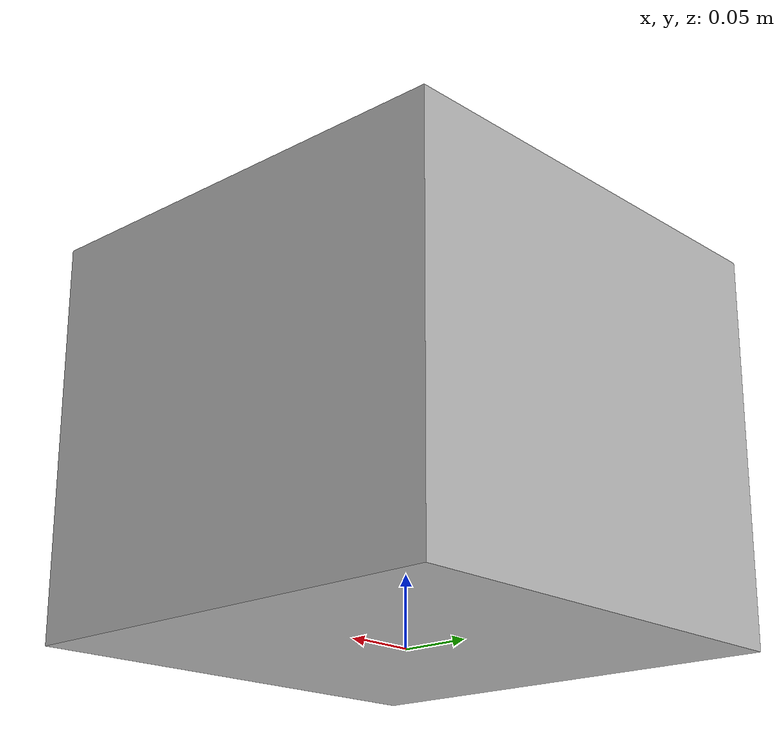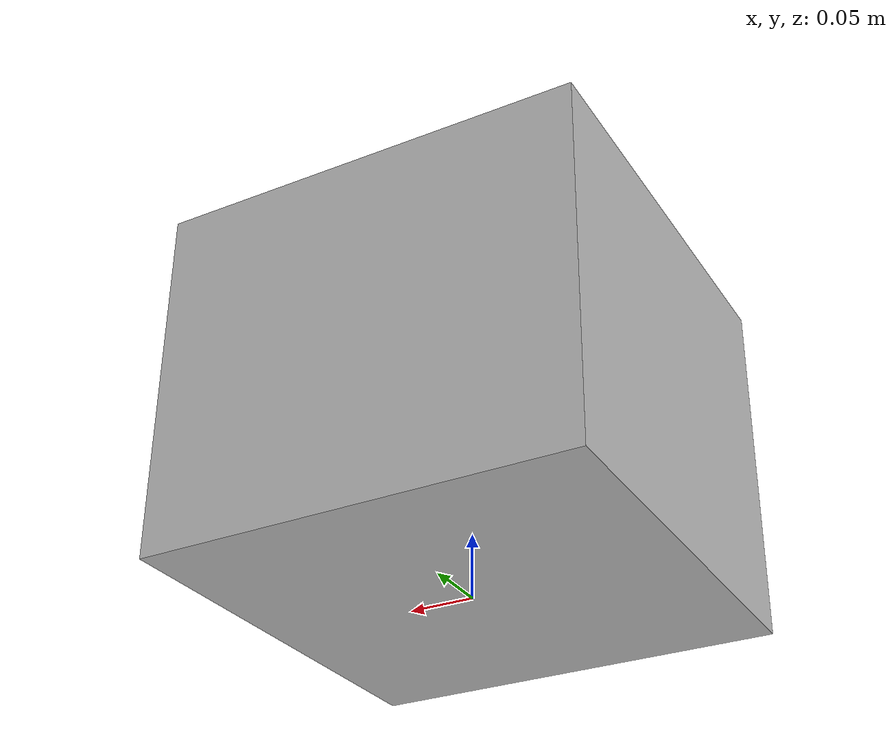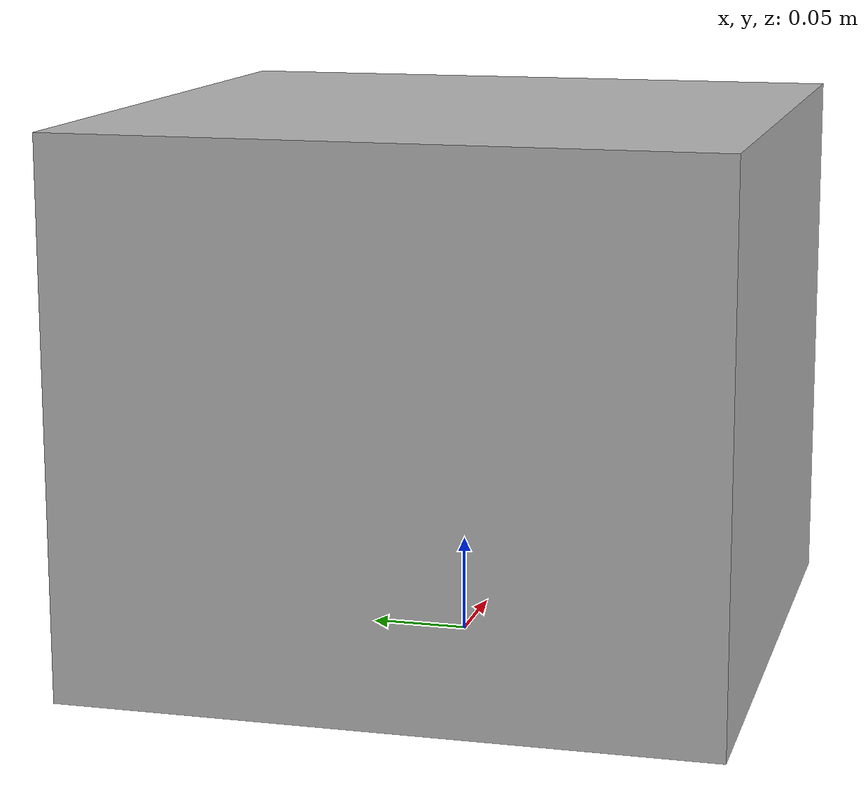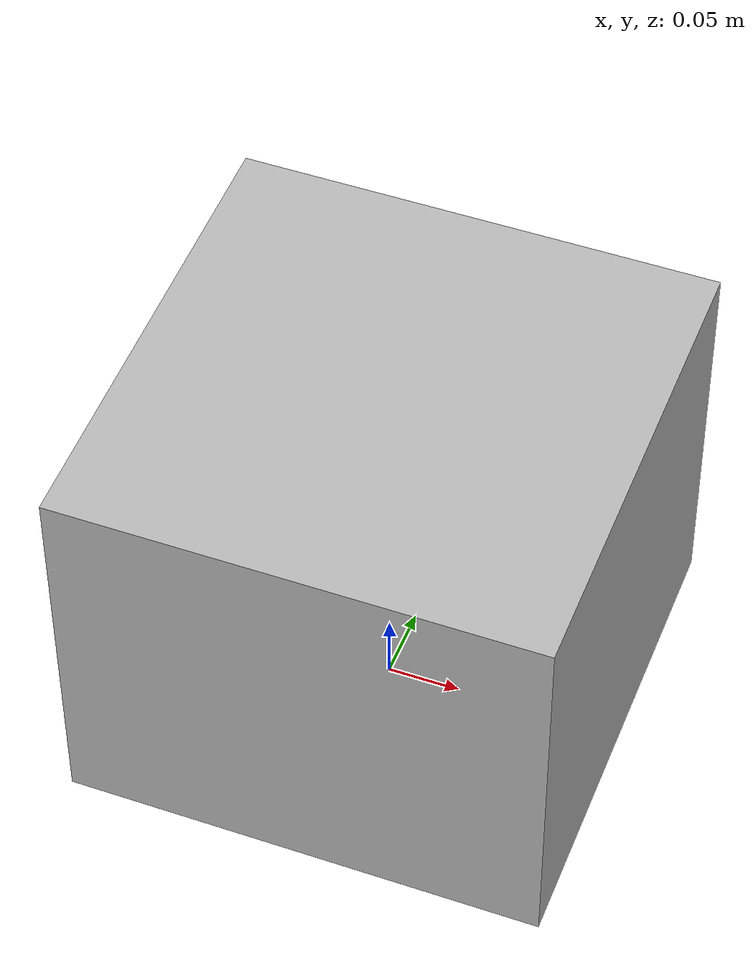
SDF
<?xml version="1.0" ?>
<sdf version="1.5">
  <model name="frc2018_cube">
    <static>false</static>
    <link name="cube">

      <!-- Visual of the field -->
      <visual name="cube_visual">
        <geometry>
          <mesh>
            <uri>model://Gazebo2018/frc2018_cube/meshes/cube.obj</uri>
          </mesh>
        </geometry>
      </visual>

      <!-- Collision geometries -->
      <collision name='cube_collision'>
        <pose>0 0 .14 0 0 0</pose>
        <geometry>
          <box>
            <size>.3302 .3302 .2794</size>
          </box>
        </geometry>
      </collision>

    </link>
  </model>
</sdf>
